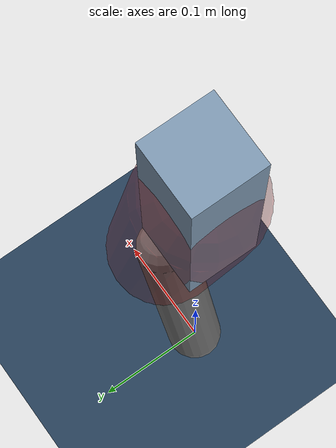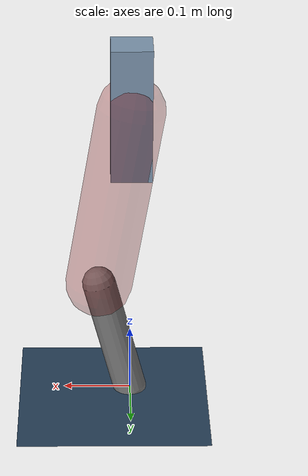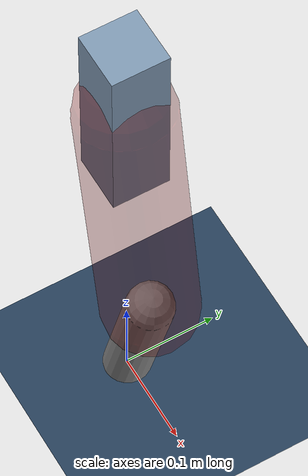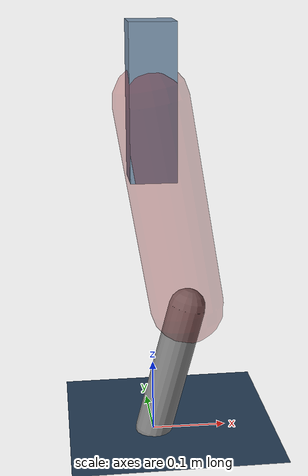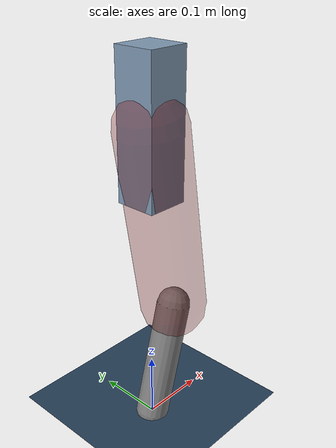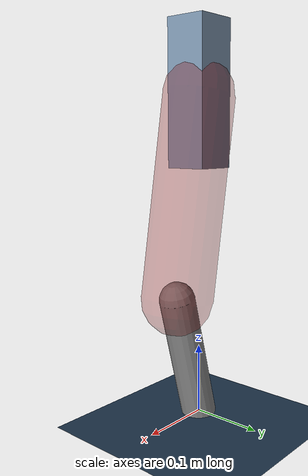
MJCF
<mujoco model="Hopper2D">
	<compiler inertiafromgeom="true" angle="radian" />
	<option timestep="0.001" integrator="implicit" cone="elliptic" solver="Newton" tolerance="1e-10" />

	<default>
		<geom contype="1" conaffinity="1" condim="3" friction="2 0.005 0.0001" solref="0.005 1" />
		<joint limited="true" damping="0.1" />
	</default>

	<asset>
		<texture name="skybox" type="skybox" builtin="gradient" rgb1=".4 .6 .8" rgb2="0 0 0" width="800" height="800" />
		<texture name="grid" type="2d" builtin="checker" rgb1=".1 .2 .3" rgb2=".2 .3 .4" width="300" height="300" mark="edge" markrgb=".2 .3 .4" />
		<material name="ground" texture="grid" texrepeat="1 1" texuniform="true" reflectance="0.1" />
		<material name="leg" rgba="0.5 0.6 0.7 1" />
	</asset>

	<worldbody>

		<geom name="floor" type="plane" size="5 5 0.25" material="ground" />

		<light directional="false" diffuse="0.8 0.8 0.8" specular="0.3 0.3 0.3" pos="0 0 2" dir="0 0 -1" />
		<light mode="targetbodycom" target="base" directional="false" diffuse="0.8 0.8 0.8" specular="0.3 0.3 0.3" pos="0 0 2" dir="0 0 -1" />

		<camera name="fixed" pos="0 -2 1" xyaxes="1 0 0 0 0 1" />
		<camera name="tracking" mode="trackcom" pos="0 -3 1" />

		<body name="root" pos="0 0 0.4580601505303111">
			<joint name="slide_x" type="slide" axis="1 0 0" range="-100 100" />
			<joint name="slide_z" type="slide" axis="0 0 1" range="0 10" />

			<body name="base" pos="0 0 0">
				<geom name="torso" type="box" size="0.03 0.03 0.1" mass="3.464" material="leg" />

				<body name="link1" pos="0 0 0" euler="0 1.4040177847799897 0">
					<joint type="hinge" axis="0 -1 0" pos="0 0 0" name="hinge1" limited="true" range="-3.14 3.14" stiffness="0" damping="0.1" />
					<geom name="thigh" type="capsule" fromto="0 0 0 0.2831178627115629 0 0" size="0.05" rgba="0.5 0 0 0.3" mass="0.94341822932122" />

					<body name="link2" pos="0.2831178627115629 0 0" euler="0 0.4237266610734121 0">
						<joint type="hinge" axis="0 -1 0" pos="0 0 0" name="hinge2" limited="true" range="-3.14 3.14" stiffness="0" damping="0.1" />
						<geom name="shank" type="capsule" fromto="0 0 0 0.18494228781874825 0 0" size="0.025" mass="0.38814805903687344" />

					</body>
				</body>
			</body>
		</body>
	</worldbody>

	<actuator>
		<motor name="torque1" joint="hinge1" ctrlrange="-183.69931900095574 183.69931900095574" ctrllimited="true" gear="1" />
		<motor name="torque2" joint="hinge2" ctrlrange="-104.61126059710051 104.61126059710051" ctrllimited="true" gear="1" />
	</actuator>
</mujoco>
